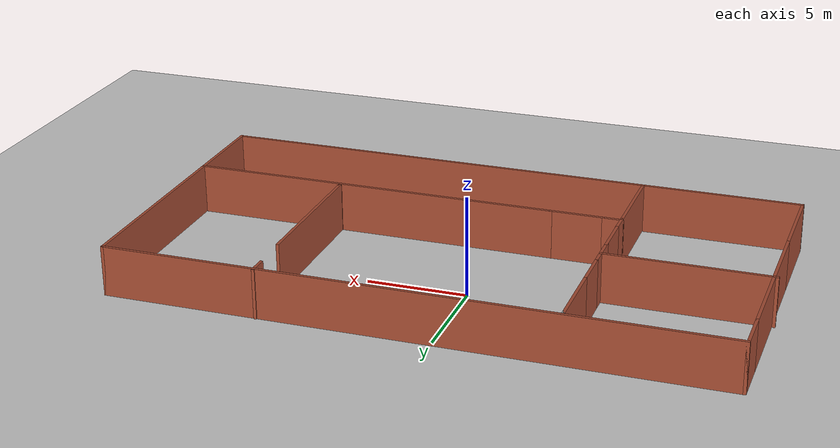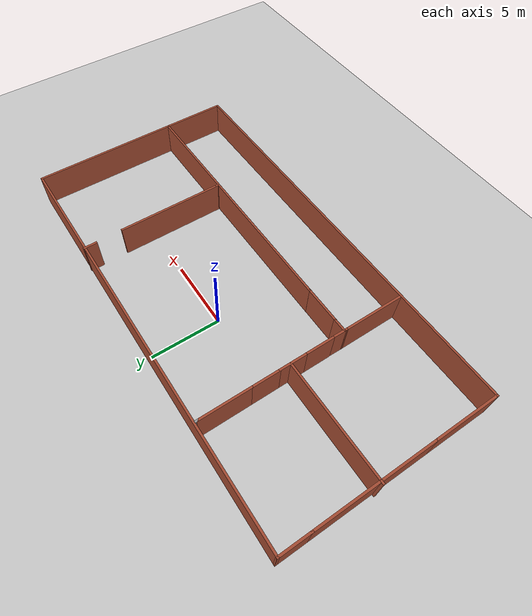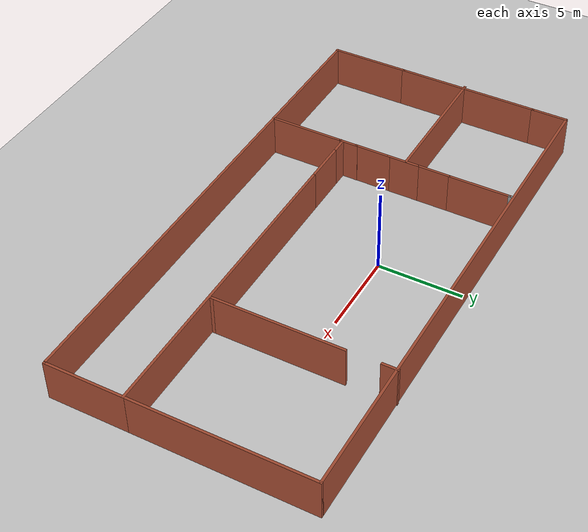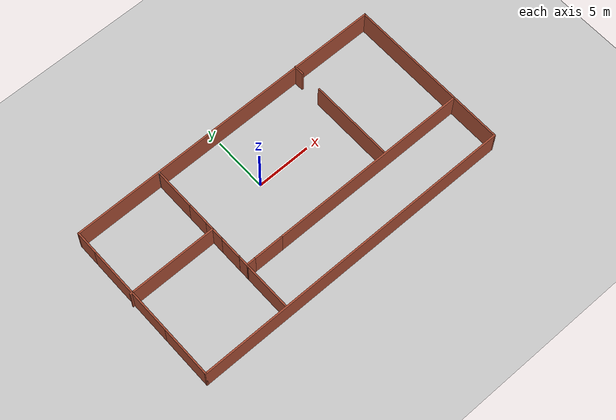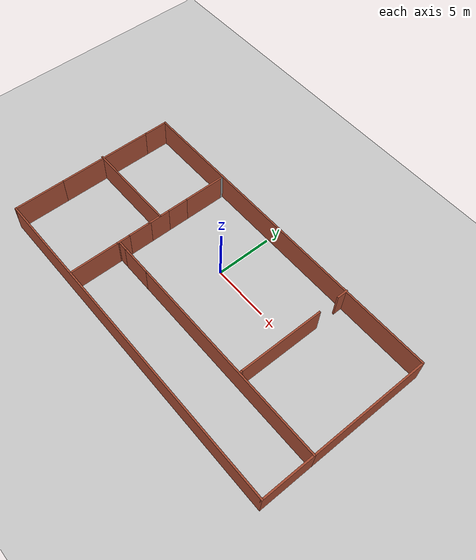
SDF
<sdf version="1.6">
 <world name="default">
  <light name="sun" type="directional">
   <pose>0 0 10 0 -0 0</pose>
   <diffuse>0.8 0.8 0.8 1</diffuse>
   <specular>0.2 0.2 0.2 1</specular>
   <attenuation>
    <range>1000</range>
    <constant>0.9</constant>
    <linear>0.01</linear>
    <quadratic>0.001</quadratic>
   </attenuation>
   <direction>-0.5 0.1 -0.9</direction>
  </light>
  <model name="ground_plane">
   <static>1</static>
   <link name="link">
    <collision name="collision">
     <geometry><plane><normal>0 0 1</normal><size>100 100</size></plane></geometry>
     <surface>
      <contact><collide_bitmask>65535</collide_bitmask></contact>
      <friction><ode><mu>100</mu><mu2>50</mu2></ode></friction>
     </surface>
    </collision>
    <visual name="visual">
     <cast_shadows>0</cast_shadows>
     <geometry><plane><normal>0 0 1</normal><size>100 100</size></plane></geometry>
     <material>
      <script><uri>file://media/materials/scripts/gazebo.material</uri><name>Gazebo/Grey</name></script>
     </material>
    </visual>
   </link>
  </model>
  <gravity>0 0 -9.8</gravity>
  <magnetic_field>6e-06 2.3e-05 -4.2e-05</magnetic_field>
  <atmosphere type="adiabatic"/>
  <physics name="default_physics" default="0" type="ode">
   <max_step_size>0.001</max_step_size>
   <real_time_factor>1</real_time_factor>
   <real_time_update_rate>1000</real_time_update_rate>
  </physics>
  <scene><ambient>0.4 0.4 0.4 1</ambient><background>0.7 0.7 0.7 1</background><shadows>1</shadows></scene>
  <spherical_coordinates>
   <surface_model>EARTH_WGS84</surface_model>
   <latitude_deg>0</latitude_deg>
   <longitude_deg>0</longitude_deg>
   <elevation>0</elevation>
   <heading_deg>0</heading_deg>
  </spherical_coordinates>
  <model name="building">
   <pose>0.9806 -2.36382 0 0 -0 0</pose>
   <link name="Wall_0">
    <collision name="Wall_0_Collision">
     <geometry><box><size>2.25 0.15 2.5</size></box></geometry>
     <pose>0 0 1.25 0 -0 0</pose>
    </collision>
    <visual name="Wall_0_Visual">
     <pose>0 0 1.25 0 -0 0</pose>
     <geometry><box><size>2.25 0.15 2.5</size></box></geometry>
     <material>
      <script><uri>file://media/materials/scripts/gazebo.material</uri><name>Gazebo/Bricks</name></script>
      <ambient>1 1 1 1</ambient>
     </material>
     <meta><layer>0</layer></meta>
    </visual>
    <pose>-14.9721 6.52571 0 0 -0 1.5708</pose>
   </link>
   <link name="Wall_1">
    <collision name="Wall_1_Collision">
     <geometry><box><size>30.25 0.15 2.5</size></box></geometry>
     <pose>0 0 1.25 0 -0 0</pose>
    </collision>
    <visual name="Wall_1_Visual">
     <pose>0 0 1.25 0 -0 0</pose>
     <geometry><box><size>30.25 0.15 2.5</size></box></geometry>
     <material>
      <script><uri>file://media/materials/scripts/gazebo.material</uri><name>Gazebo/Bricks</name></script>
      <ambient>1 1 1 1</ambient>
     </material>
     <meta><layer>0</layer></meta>
    </visual>
    <pose>0.077883 7.57571 0 0 -0 0</pose>
   </link>
   <link name="Wall_11">
    <collision name="Wall_11_Collision">
     <geometry><box><size>18.75 0.15 2.5</size></box></geometry>
     <pose>0 0 1.25 0 -0 0</pose>
    </collision>
    <visual name="Wall_11_Visual">
     <pose>0 0 1.25 0 -0 0</pose>
     <geometry><box><size>18.75 0.15 2.5</size></box></geometry>
     <material>
      <script><uri>file://media/materials/scripts/gazebo.material</uri><name>Gazebo/Bricks</name></script>
      <ambient>1 1 1 1</ambient>
     </material>
     <meta><layer>0</layer></meta>
    </visual>
    <pose>5.82788 -3.02429 0 0 -0 3.14159</pose>
   </link>
   <link name="Wall_14">
    <collision name="Wall_14_Collision">
     <geometry><box><size>4.5 0.15 2.5</size></box></geometry>
     <pose>0 0 1.25 0 -0 0</pose>
    </collision>
    <visual name="Wall_14_Visual">
     <pose>0 0 1.25 0 -0 0</pose>
     <geometry><box><size>4.5 0.15 2.5</size></box></geometry>
     <material>
      <script><uri>file://media/materials/scripts/gazebo.material</uri><name>Gazebo/Bricks</name></script>
      <ambient>1 1 1 1</ambient>
     </material>
     <meta><layer>0</layer></meta>
    </visual>
    <pose>-6.98743 -5.3597 0 0 -0 1.5708</pose>
   </link>
   <link name="Wall_19">
    <collision name="Wall_19_Collision">
     <geometry><box><size>2 0.15 2.5</size></box></geometry>
     <pose>0 0 1.25 0 -0 0</pose>
    </collision>
    <visual name="Wall_19_Visual">
     <pose>0 0 1.25 0 -0 0</pose>
     <geometry><box><size>2 0.15 2.5</size></box></geometry>
     <material>
      <script><uri>file://media/materials/scripts/gazebo.material</uri><name>Gazebo/Bricks</name></script>
      <ambient>1 1 1 1</ambient>
     </material>
     <meta><layer>0</layer></meta>
    </visual>
    <pose>-6.98743 0.834126 0 0 -0 1.5708</pose>
   </link>
   <link name="Wall_2">
    <collision name="Wall_2_Collision">
     <geometry><box><size>10.75 0.15 2.5</size></box></geometry>
     <pose>0 0 1.25 0 -0 0</pose>
    </collision>
    <visual name="Wall_2_Visual">
     <pose>0 0 1.25 0 -0 0</pose>
     <geometry><box><size>10.75 0.15 2.5</size></box></geometry>
     <material>
      <script><uri>file://media/materials/scripts/gazebo.material</uri><name>Gazebo/Bricks</name></script>
      <ambient>1 1 1 1</ambient>
     </material>
     <meta><layer>0</layer></meta>
    </visual>
    <pose>15.1279 2.27571 0 0 -0 -1.5708</pose>
   </link>
   <link name="Wall_21">
    <collision name="Wall_21_Collision">
     <geometry><box><size>8.25 0.15 2.5</size></box></geometry>
     <pose>0 0 1.25 0 -0 0</pose>
    </collision>
    <visual name="Wall_21_Visual">
     <pose>0 0 1.25 0 -0 0</pose>
     <geometry><box><size>8.25 0.15 2.5</size></box></geometry>
     <material>
      <script><uri>file://media/materials/scripts/gazebo.material</uri><name>Gazebo/Bricks</name></script>
      <ambient>1 1 1 1</ambient>
     </material>
     <meta><layer>0</layer></meta>
    </visual>
    <pose>-11.0779 1.00143 0 0 -0 3.14159</pose>
   </link>
   <link name="Wall_23">
    <collision name="Wall_23_Collision">
     <geometry><box><size>3.75 0.15 2.5</size></box></geometry>
     <pose>0 0 1.25 0 -0 0</pose>
    </collision>
    <visual name="Wall_23_Visual">
     <pose>0 0 1.25 0 -0 0</pose>
     <geometry><box><size>3.75 0.15 2.5</size></box></geometry>
     <material>
      <script><uri>file://media/materials/scripts/gazebo.material</uri><name>Gazebo/Bricks</name></script>
      <ambient>1 1 1 1</ambient>
     </material>
     <meta><layer>0</layer></meta>
    </visual>
    <pose>-6.98743 5.55241 0 0 -0 1.5708</pose>
   </link>
   <link name="Wall_24">
    <collision name="Wall_24_Collision">
     <geometry><box><size>0.25 0.15 2.5</size></box></geometry>
     <pose>0 0 1.25 0 -0 0</pose>
    </collision>
    <visual name="Wall_24_Visual">
     <pose>0 0 1.25 0 -0 0</pose>
     <geometry><box><size>0.25 0.15 2.5</size></box></geometry>
     <material>
      <script><uri>file://media/materials/scripts/gazebo.material</uri><name>Gazebo/Grey</name></script>
      <ambient>1 1 1 1</ambient>
     </material>
     <meta><layer>0</layer></meta>
    </visual>
    <pose>-6.98743 7.40241 0 0 -0 1.5708</pose>
   </link>
   <link name="Wall_28">
    <collision name="Wall_28_Collision">
     <geometry><box><size>7.75 0.15 2.5</size></box></geometry>
     <pose>0 0 1.25 0 -0 0</pose>
    </collision>
    <visual name="Wall_28_Visual">
     <pose>0 0 1.25 0 -0 0</pose>
     <geometry><box><size>7.75 0.15 2.5</size></box></geometry>
     <material>
      <script><uri>file://media/materials/scripts/gazebo.material</uri><name>Gazebo/Bricks</name></script>
      <ambient>1 1 1 1</ambient>
     </material>
     <meta><layer>0</layer></meta>
    </visual>
    <pose>7.50962 0.969723 0 0 -0 -1.5708</pose>
   </link>
   <link name="Wall_30">
    <collision name="Wall_30_Collision">
     <geometry><box><size>0.25 0.15 2.5</size></box></geometry>
     <pose>0 0 1.25 0 -0 0</pose>
    </collision>
    <visual name="Wall_30_Visual">
     <pose>0 0 1.25 0 -0 0</pose>
     <geometry><box><size>0.25 0.15 2.5</size></box></geometry>
     <material>
      <script><uri>file://media/materials/scripts/gazebo.material</uri><name>Gazebo/Bricks</name></script>
      <ambient>1 1 1 1</ambient>
     </material>
     <meta><layer>0</layer></meta>
    </visual>
    <pose>7.50962 -2.88028 0 0 -0 -1.5708</pose>
   </link>
   <link name="Wall_32">
    <collision name="Wall_32_Collision">
     <geometry><box><size>1 0.15 2.5</size></box></geometry>
     <pose>0 0 1.25 0 -0 0</pose>
    </collision>
    <visual name="Wall_32_Visual">
     <pose>0 0 1.25 0 -0 0</pose>
     <geometry><box><size>1 0.15 2.5</size></box></geometry>
     <material>
      <script><uri>file://media/materials/scripts/gazebo.material</uri><name>Gazebo/Bricks</name></script>
      <ambient>1 1 1 1</ambient>
     </material>
     <meta><layer>0</layer></meta>
    </visual>
    <pose>7.45893 7.19929 0 0 -0 -1.5708</pose>
   </link>
   <link name="Wall_37">
    <collision name="Wall_37_Collision">
     <geometry><box><size>1 0.15 2.5</size></box></geometry>
     <pose>0 0 1.25 0 -0 0</pose>
    </collision>
    <visual name="Wall_37_Visual">
     <pose>0 0 1.25 0 -0 0</pose>
     <geometry><box><size>1 0.15 2.5</size></box></geometry>
     <material>
      <script><uri>file://media/materials/scripts/gazebo.material</uri><name>Gazebo/Bricks</name></script>
      <ambient>1 1 1 1</ambient>
     </material>
     <meta><layer>0</layer></meta>
    </visual>
    <pose>-6.54022 -3.0261 0 0 -0 3.14159</pose>
   </link>
   <link name="Wall_4">
    <collision name="Wall_4_Collision">
     <geometry><box><size>8.65 0.15 2.5</size></box></geometry>
     <pose>0 0 1.25 0 -0 0</pose>
    </collision>
    <visual name="Wall_4_Visual">
     <pose>0 0 1.25 0 -0 0</pose>
     <geometry><box><size>8.65 0.15 2.5</size></box></geometry>
     <material>
      <script><uri>file://media/materials/scripts/gazebo.material</uri><name>Gazebo/Bricks</name></script>
      <ambient>1 1 1 1</ambient>
     </material>
     <meta><layer>0</layer></meta>
    </visual>
    <pose>-14.9721 1.22571 0 0 -0 1.5708</pose>
   </link>
   <link name="Wall_44">
    <collision name="Wall_44_Collision">
     <geometry><box><size>1.20526 0.15 2.5</size></box></geometry>
     <pose>0 0 1.25 0 -0 0</pose>
    </collision>
    <visual name="Wall_44_Visual">
     <pose>0 0 1.25 0 -0 0</pose>
     <geometry><box><size>1.20526 0.15 2.5</size></box></geometry>
     <material>
      <script><uri>file://media/materials/scripts/gazebo.material</uri><name>Gazebo/Bricks</name></script>
      <ambient>1 1 1 1</ambient>
     </material>
     <meta><layer>0</layer></meta>
    </visual>
    <pose>-6.98173 -2.6571 0 0 -0 -1.5816</pose>
   </link>
   <link name="Wall_7">
    <collision name="Wall_7_Collision">
     <geometry><box><size>4.75 0.15 2.5</size></box></geometry>
     <pose>0 0 1.25 0 -0 0</pose>
    </collision>
    <visual name="Wall_7_Visual">
     <pose>0 0 1.25 0 -0 0</pose>
     <geometry><box><size>4.75 0.15 2.5</size></box></geometry>
     <material>
      <script><uri>file://media/materials/scripts/gazebo.material</uri><name>Gazebo/Bricks</name></script>
      <ambient>1 1 1 1</ambient>
     </material>
     <meta><layer>0</layer></meta>
    </visual>
    <pose>-14.9721 -5.32429 0 0 -0 -1.5708</pose>
   </link>
   <link name="Wall_8">
    <collision name="Wall_8_Collision">
     <geometry><box><size>30.25 0.15 2.5</size></box></geometry>
     <pose>0 0 1.25 0 -0 0</pose>
    </collision>
    <visual name="Wall_8_Visual">
     <pose>0 0 1.25 0 -0 0</pose>
     <geometry><box><size>30.25 0.15 2.5</size></box></geometry>
     <material>
      <script><uri>file://media/materials/scripts/gazebo.material</uri><name>Gazebo/Bricks</name></script>
      <ambient>1 1 1 1</ambient>
     </material>
     <meta><layer>0</layer></meta>
    </visual>
    <pose>0.077883 -7.62429 0 0 -0 0</pose>
   </link>
   <link name="Wall_9">
    <collision name="Wall_9_Collision">
     <geometry><box><size>4.75 0.15 2.5</size></box></geometry>
     <pose>0 0 1.25 0 -0 0</pose>
    </collision>
    <visual name="Wall_9_Visual">
     <pose>0 0 1.25 0 -0 0</pose>
     <geometry><box><size>4.75 0.15 2.5</size></box></geometry>
     <material>
      <script><uri>file://media/materials/scripts/gazebo.material</uri><name>Gazebo/Bricks</name></script>
      <ambient>1 1 1 1</ambient>
     </material>
     <meta><layer>0</layer></meta>
    </visual>
    <pose>15.1279 -5.32429 0 0 -0 1.5708</pose>
   </link>
   <static>1</static>
  </model>
  <audio><device>default</device></audio>
  <model name="indoor2">
   <pose>-6.00679 -1.59923 0 0 -0 0</pose>
   <link name="Wall_1">
    <collision name="Wall_1_Collision">
     <geometry><box><size>2 0.15 2.5</size></box></geometry>
     <pose>0 0 1.25 0 -0 0</pose>
    </collision>
    <visual name="Wall_1_Visual">
     <pose>0 0 1.25 0 -0 0</pose>
     <geometry><box><size>2 0.15 2.5</size></box></geometry>
     <material>
      <script><uri>file://media/materials/scripts/gazebo.material</uri><name>Gazebo/Bricks</name></script>
      <ambient>1 1 1 1</ambient>
     </material>
     <meta><layer>0</layer></meta>
    </visual>
    <pose>-0.000383 1.98639 0 0 -0 1.5708</pose>
   </link>
   <link name="Wall_3">
    <collision name="Wall_3_Collision">
     <geometry><box><size>2.25 0.15 2.5</size></box></geometry>
     <pose>0 0 1.25 0 -0 0</pose>
    </collision>
    <visual name="Wall_3_Visual">
     <pose>0 0 1.25 0 -0 0</pose>
     <geometry><box><size>2.25 0.15 2.5</size></box></geometry>
     <material>
      <script><uri>file://media/materials/scripts/gazebo.material</uri><name>Gazebo/Bricks</name></script>
      <ambient>1 1 1 1</ambient>
     </material>
     <meta><layer>0</layer></meta>
    </visual>
    <pose>0.000383 -1.86139 0 0 -0 1.5708</pose>
   </link>
   <static>1</static>
  </model>
  <model name="indoor1">
   <pose>-3.79873 -5.39023 0 0 -0 0</pose>
   <link name="Wall_7">
    <collision name="Wall_7_Collision">
     <geometry><box><size>2.75 0.15 2.5</size></box></geometry>
     <pose>0 0 1.25 0 -0 0</pose>
    </collision>
    <visual name="Wall_7_Visual">
     <pose>0 0 1.25 0 -0 0</pose>
     <geometry><box><size>2.75 0.15 2.5</size></box></geometry>
     <material>
      <script><uri>file://media/materials/scripts/gazebo.material</uri><name>Gazebo/Bricks</name></script>
      <ambient>1 1 1 1</ambient>
     </material>
     <meta><layer>0</layer></meta>
    </visual>
   </link>
   <static>1</static>
  </model>
 </world>
</sdf>
